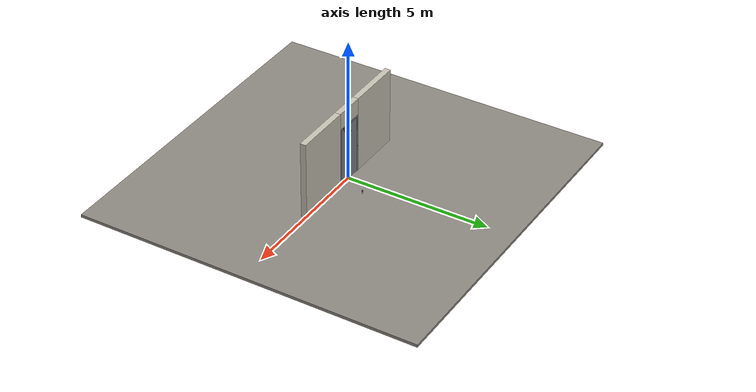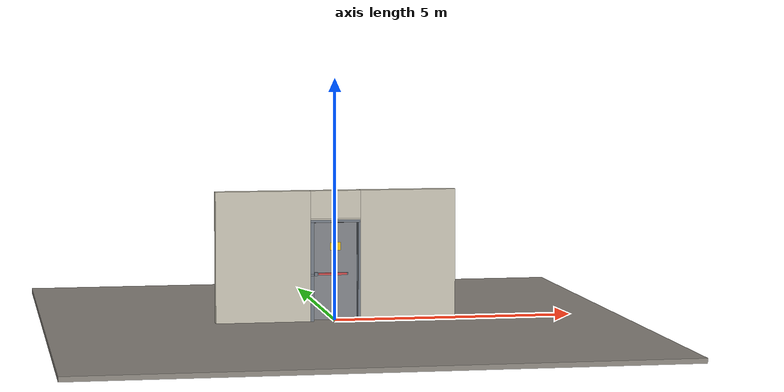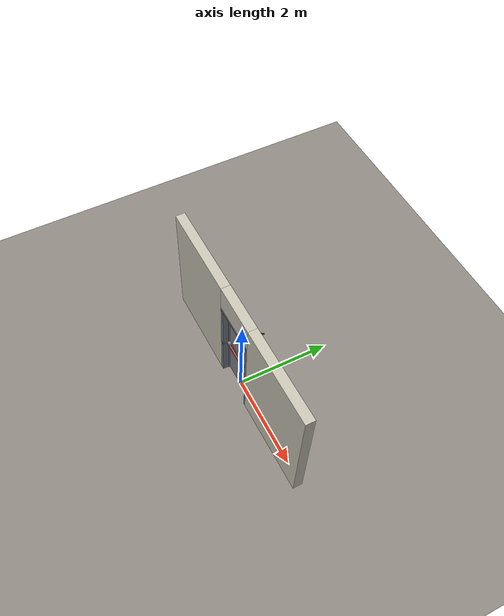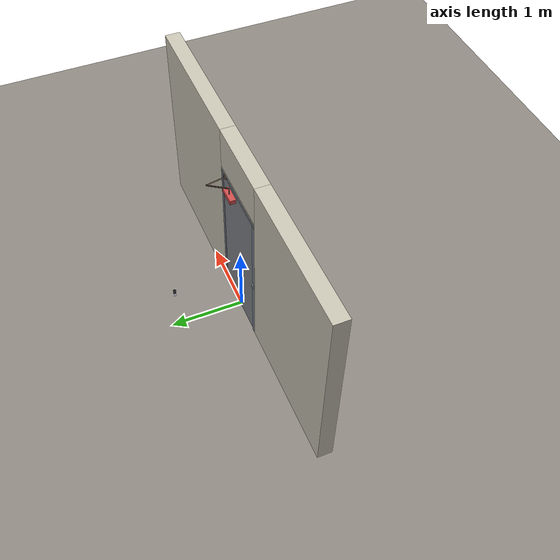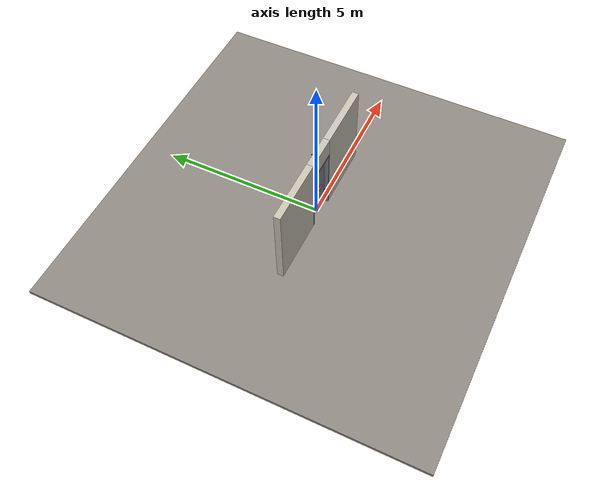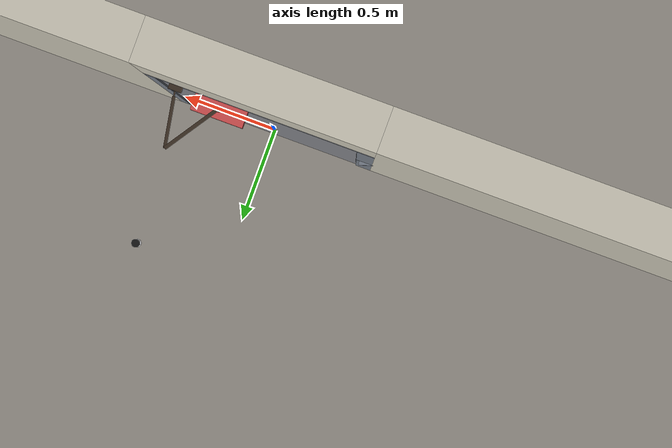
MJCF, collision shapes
<?xml version="1.0" ?>
<mujoco model="db0590_swing_single_full">
  <compiler angle="radian" meshdir="../../hardware" texturedir="../../textures" autolimits="true" inertiafromgeom="false"/>
  <option timestep="0.002" integrator="implicitfast" cone="elliptic" impratio="10" noslip_iterations="3">
    <flag multiccd="enable"/>
  </option>
  <size memory="16M"/>
  <default>
    <geom condim="4" solref="0.005 1" solimp="0.95 0.99 0.001"/>
    <joint solreflimit="0.005 1" solimplimit="0.95 0.99 0.001"/>
    <tendon solreflimit="0.005 1"/>
    <equality solref="0.002 1"/>
  </default>
  <visual>
    <headlight ambient="0.4 0.4 0.4" diffuse="0.7 0.7 0.7" specular="0.2 0.2 0.2"/>
    <quality shadowsize="4096"/>
    <map znear="0.01" zfar="60"/>
  </visual>
  <asset>
    <mesh name="closer_body_b226fdb10b" file="closer_body_b226fdb10b.obj"/>
    <mesh name="exit_sign_a6449bfa2c" file="exit_sign_a6449bfa2c.obj"/>
    <mesh name="hinge_e22b26c0c1" file="hinge_e22b26c0c1.obj"/>
    <mesh name="hinge_jamb_e1d088f8dc" file="hinge_jamb_e1d088f8dc.obj"/>
    <mesh name="touchbar_pad_2729a067b4" file="touchbar_pad_2729a067b4.obj"/>
    <material name="mat_floor" rgba="0.55 0.53 0.5 1" specular="0.2" shininess="0.15" reflectance="0"/>
    <material name="mat_wall" rgba="0.78 0.76 0.7 1" specular="0.2" shininess="0.1" reflectance="0"/>
    <material name="mat_leaf" rgba="0.5 0.51 0.53 1" specular="0.23" shininess="0.47" reflectance="0.02"/>
    <material name="mat_hinge" rgba="0.65 0.66 0.68 1" specular="0.74" shininess="0.5" reflectance="0.36"/>
    <material name="mat_op_steel_painted" rgba="0.45 0.48 0.52 1" specular="0.32" shininess="0.6" reflectance="0.08"/>
    <material name="mat_bolt" rgba="0.75 0.76 0.77 1" specular="0.8" shininess="0.65" reflectance="0.4"/>
    <material name="mat_frame" rgba="0.45 0.48 0.52 1" specular="0.32" shininess="0.6" reflectance="0.08"/>
    <material name="mat_seal" rgba="0.1 0.1 0.1 1" specular="0.2" shininess="0.1" reflectance="0"/>
    <material name="mat_closer" rgba="0.22 0.17 0.13 1" specular="0.8" shininess="0.6" reflectance="0.4"/>
    <material name="mat_exit_sign" rgba="0.85 0.1 0.1 1" specular="0.2" shininess="0.6" reflectance="0"/>
    <material name="mat_sign_bracket" rgba="0.8 0.81 0.83 1" specular="0.8" shininess="0.6" reflectance="0.4"/>
    <material name="mat_placard" rgba="0.95 0.75 0.05 1" specular="0.2" shininess="0.5" reflectance="0"/>
    <material name="mat_bumper_stop" rgba="0.08 0.08 0.08 1" specular="0.2" shininess="0.1" reflectance="0"/>
    <material name="mat_stop_base" rgba="0.9 0.9 0.92 1" specular="0.8" shininess="0.9" reflectance="0.4"/>
    <texture name="skybox" type="skybox" builtin="gradient" rgb1="0.6 0.7 0.85" rgb2="0.9 0.92 0.95" width="256" height="256"/>
  </asset>
  <worldbody>
    <light name="sun" pos="1.5 -2.5 4" dir="-0.3 0.5 -0.8" directional="true" diffuse="0.8 0.8 0.8" specular="0.3 0.3 0.3" castshadow="true"/>
    <light name="fill" pos="-1.5 2.5 3" dir="0.3 -0.5 -0.7" directional="true" diffuse="0.35 0.35 0.4" castshadow="false"/>
    <camera name="robot_view" pos="0 -2.613187 1.734312" xyaxes="1 0 0 0 0.26963 0.962964" fovy="52"/>
    <camera name="far_view" pos="0 2.471187 1.734312" xyaxes="-1 0 0 0 -0.26963 0.962964" fovy="52"/>
    <camera name="iso" pos="-1.932062 -2.206438 2.141063" xyaxes="0.741536 -0.670913 0 0.242917 0.268487 0.932151" fovy="46"/>
    <camera name="detail_handle" pos="-0.1735 -0.871 1.245" xyaxes="0.97561 0.219512 0 -0.070934 0.315262 0.94635" fovy="38"/>
    <geom name="floor" type="box" size="6 6 0.05" pos="0 0 -0.05" material="mat_floor" group="0" contype="1" conaffinity="1" friction="0.8 0.005 0.0001" density="2400"/>
    <geom name="wall_left" type="box" size="0.97975 0.1 1.35" pos="-1.52025 -0.071 1.35" material="mat_wall" group="0" contype="1" conaffinity="1" friction="0.6 0.005 0.0001" density="800"/>
    <geom name="wall_right" type="box" size="0.99475 0.1 1.35" pos="1.50525 -0.071 1.35" material="mat_wall" group="0" contype="1" conaffinity="1" friction="0.6 0.005 0.0001" density="800"/>
    <geom name="wall_header" type="box" size="0.5255 0.1 0.2875" pos="-0.015 -0.071 2.4125" material="mat_wall" group="0" contype="1" conaffinity="1" friction="0.6 0.005 0.0001" density="800"/>
    <geom name="hinge_0_jamb" type="mesh" mesh="hinge_jamb_e1d088f8dc" pos="0.4575 0.029 0.259" quat="0 0 0 1" material="mat_hinge" group="1" contype="0" conaffinity="0" density="7850"/>
    <geom name="hinge_1_jamb" type="mesh" mesh="hinge_jamb_e1d088f8dc" pos="0.4575 0.029 1.025" quat="0 0 0 1" material="mat_hinge" group="1" contype="0" conaffinity="0" density="7850"/>
    <geom name="hinge_2_jamb" type="mesh" mesh="hinge_jamb_e1d088f8dc" pos="0.4575 0.029 1.861" quat="0 0 0 1" material="mat_hinge" group="1" contype="0" conaffinity="0" density="7850"/>
    <geom name="jamb_hinge" type="box" size="0.025 0.1 1.0225" pos="0.4855 -0.071 1.0225" material="mat_frame" group="0" contype="1" conaffinity="1" friction="0.6 0.005 0.0001" density="300"/>
    <geom name="strike_965_wall_n" type="box" size="0.04 0.058 0.02" pos="-0.5005 -0.113 0.965" material="mat_frame" group="0" contype="1" conaffinity="1" friction="0.6 0.005 0.0001" density="300"/>
    <geom name="strike_965_wall_p" type="box" size="0.04 0.008 0.02" pos="-0.5005 -0.025 0.965" material="mat_frame" group="0" contype="1" conaffinity="1" friction="0.6 0.005 0.0001" density="300"/>
    <geom name="strike_965_ramp" type="box" size="0.04 0.034482 0.02" pos="-0.508781 0.0044 0.965" quat="0.989198 0 0 0.146587" material="mat_frame" group="0" contype="1" conaffinity="1" friction="0.12 0.005 0.0001" density="300"/>
    <geom name="strike_965_back" type="box" size="0.0285 0.011 0.02" pos="-0.512 -0.044 0.965" material="mat_frame" group="0" contype="1" conaffinity="1" friction="0.6 0.005 0.0001" density="300"/>
    <geom name="jamb_strike_0" type="box" size="0.04 0.1 0.4725" pos="-0.5005 -0.071 0.4725" material="mat_frame" group="0" contype="1" conaffinity="1" friction="0.6 0.005 0.0001" density="300"/>
    <geom name="jamb_strike_1" type="box" size="0.04 0.1 0.53" pos="-0.5005 -0.071 1.515" material="mat_frame" group="0" contype="1" conaffinity="1" friction="0.6 0.005 0.0001" density="300"/>
    <geom name="jamb_head" type="box" size="0.5255 0.1 0.025" pos="-0.015 -0.071 2.07" material="mat_frame" group="0" contype="1" conaffinity="1" friction="0.6 0.005 0.0001" density="300"/>
    <geom name="head_stud" type="box" size="0.5255 0.1 0.015" pos="-0.015 -0.071 2.11" material="mat_wall" group="0" contype="1" conaffinity="1" friction="0.6 0.005 0.0001" density="500"/>
    <geom name="stop_hinge" type="box" size="0.0055 0.016 1.0225" pos="0.455 -0.0385 1.0225" material="mat_frame" group="0" contype="1" conaffinity="1" friction="0.6 0.005 0.0001" density="300"/>
    <geom name="stop_strike" type="box" size="0.0055 0.016 0.45875" pos="-0.455 -0.0385 0.45875" material="mat_frame" group="0" contype="1" conaffinity="1" friction="0.6 0.005 0.0001" density="300"/>
    <geom name="stop_strike_1" type="box" size="0.0055 0.016 0.51625" pos="-0.455 -0.0385 1.52875" material="mat_frame" group="0" contype="1" conaffinity="1" friction="0.6 0.005 0.0001" density="300"/>
    <geom name="stop_head" type="box" size="0.4605 0.016 0.0055" pos="0 -0.0385 2.0395" material="mat_frame" group="0" contype="1" conaffinity="1" friction="0.6 0.005 0.0001" density="300"/>
    <geom name="seal_hinge" type="box" size="0.004 0.0025 1.0225" pos="0.4575 -0.0245 1.0225" material="mat_seal" group="1" contype="0" conaffinity="0" density="1100"/>
    <geom name="seal_strike" type="box" size="0.004 0.0025 0.45875" pos="-0.4575 -0.0245 0.45875" material="mat_seal" group="1" contype="0" conaffinity="0" density="1100"/>
    <geom name="seal_strike_1" type="box" size="0.004 0.0025 0.51625" pos="-0.4575 -0.0245 1.52875" material="mat_seal" group="1" contype="0" conaffinity="0" density="1100"/>
    <geom name="seal_head" type="box" size="0.4405 0.0025 0.008" pos="0 -0.0245 2.033" material="mat_seal" group="1" contype="0" conaffinity="0" density="1100"/>
    <geom name="closer_bracket" type="box" size="0.03 0.012 0.014" pos="0.3605 0.041 2.075" material="mat_closer" group="1" contype="0" conaffinity="0" density="2700"/>
    <geom name="exit_sign" type="mesh" mesh="exit_sign_a6449bfa2c" pos="0 -0.15 2.345" material="mat_exit_sign" group="2" contype="0" conaffinity="0" density="500"/>
    <geom name="door_stop_base" type="cylinder" size="0.022 0.003" pos="0.4735 0.8059 0.003" material="mat_stop_base" group="0" contype="1" conaffinity="1" friction="0.6 0.005 0.0001" density="7850"/>
    <geom name="door_stop_post" type="cylinder" size="0.012 0.0245" pos="0.4735 0.8059 0.0305" material="mat_stop_base" group="0" contype="1" conaffinity="1" friction="0.6 0.005 0.0001" density="7850"/>
    <geom name="door_stop_bumper" type="cylinder" size="0.022 0.02" pos="0.4735 0.8059 0.075" material="mat_bumper_stop" group="0" contype="1" conaffinity="1" friction="0.6 0.005 0.0001" density="1100"/>
    <site name="approach_point" pos="0 -1.5 0" quat="1 0 0 0" size="0.05" rgba="0.2 0.9 0.2 0.5" group="4"/>
    <site name="goal_point" pos="0 1.5 0" quat="1 0 0 0" size="0.05" rgba="0.2 0.9 0.2 0.5" group="4"/>
    <site name="door_plane_center" pos="0 0 1.0225" quat="1 0 0 0" size="0.02" rgba="0.2 0.9 0.2 0.5" group="4"/>
    <body name="leaf" pos="0.4605 0 0">
      <inertial pos="-0.444195 0.005743 1.130999" mass="62.9803" quat="0.513391 -0.511852 -0.495656 -0.478291" diaginertia="4.22587474 24.084801866 28.238137328"/>
      <joint name="leaf_hinge" type="hinge" axis="0 0 -1" pos="-0.003 0.029 0" limited="true" range="0 1.570796" solreflimit="0.02 1" damping="10.25611" frictionloss="2.080027" stiffness="15.8391" springref="-1.756413" armature="0.02"/>
      <geom name="leaf_slab" type="box" size="0.457 0.022 1.016" pos="-0.46 0 1.025" material="mat_leaf" group="0" contype="1" conaffinity="1" friction="0.4 0.005 0.0001" density="1"/>
      <geom name="hinge_0" type="mesh" mesh="hinge_e22b26c0c1" pos="-0.003 0.029 0.259" quat="0 0 0 1" material="mat_hinge" group="1" contype="0" conaffinity="0" density="7850"/>
      <geom name="hinge_1" type="mesh" mesh="hinge_e22b26c0c1" pos="-0.003 0.029 1.025" quat="0 0 0 1" material="mat_hinge" group="1" contype="0" conaffinity="0" density="7850"/>
      <geom name="hinge_2" type="mesh" mesh="hinge_e22b26c0c1" pos="-0.003 0.029 1.861" quat="0 0 0 1" material="mat_hinge" group="1" contype="0" conaffinity="0" density="7850"/>
      <geom name="leaf_exit_device_rail" type="box" size="0.31705 0.006 0.025" pos="-0.51995 -0.028 0.965" material="mat_op_steel_painted" group="0" contype="1" conaffinity="1" friction="0.6 0.005 0.0001" density="3000"/>
      <geom name="leaf_exit_device_rail_end_n" type="box" size="0.01 0.0325 0.025" pos="-0.827 -0.0545 0.965" material="mat_op_steel_painted" group="0" contype="1" conaffinity="1" friction="0.6 0.005 0.0001" density="3000"/>
      <geom name="leaf_exit_device_rail_end_p" type="box" size="0.01 0.0325 0.025" pos="-0.2129 -0.0545 0.965" material="mat_op_steel_painted" group="0" contype="1" conaffinity="1" friction="0.6 0.005 0.0001" density="3000"/>
      <geom name="leaf_exit_device_case" type="box" size="0.034 0.034125 0.0375" pos="-0.871 -0.056125 0.965" material="mat_op_steel_painted" group="0" contype="1" conaffinity="1" friction="0.6 0.005 0.0001" density="3000"/>
      <geom name="closer_body" type="mesh" mesh="closer_body_b226fdb10b" pos="-0.3 0.022 1.952" quat="0 0 0.707107 0.707107" material="mat_closer" group="1" contype="0" conaffinity="0" density="2000"/>
      <geom name="closer_body_col" type="box" size="0.12 0.04 0.03" pos="-0.3 0.062 1.952" material="mat_closer" group="3" contype="1" conaffinity="1" rgba="0.8 0.3 0.3 0.25" friction="0.6 0.005 0.0001" density="2000"/>
      <geom name="closer_pinion_shaft" type="cylinder" size="0.008 0.0615" pos="-0.3 0.064 2.0135" material="mat_closer" group="1" contype="0" conaffinity="0" density="2700"/>
      <geom name="warning_placard" type="box" size="0.11 0.001 0.08" pos="-0.46 -0.023 1.533" material="mat_placard" group="2" contype="0" conaffinity="0" density="1000"/>
      <site name="leaf_edge_mid" pos="-0.917 0 1.016" quat="1 0 0 0" size="0.02" rgba="0.2 0.9 0.2 0.5" group="4"/>
      <body name="leaf_exit_device" pos="-0.51995 -0.022 0.965">
        <inertial pos="0 -0.05 0" mass="4.76361" quat="0 0 -0.707107 0.707107" diaginertia="0.00116113 0.137653089 0.138099678"/>
        <joint name="leaf_exit_device_slide" type="slide" axis="0 1 0" limited="true" range="0 0.016" damping="221.666642" frictionloss="0.5" stiffness="2500" springref="-0.018" armature="0.15"/>
        <geom name="leaf_exit_device_pad" type="mesh" mesh="touchbar_pad_2729a067b4" pos="0 0 0" quat="0 0 -0.707107 0.707107" material="mat_op_steel_painted" group="1" contype="0" conaffinity="0" density="3000"/>
        <geom name="leaf_exit_device_pad_col" type="box" size="0.29405 0.015 0.0225" pos="0 -0.05 0" material="mat_op_steel_painted" group="3" contype="1" conaffinity="1" rgba="0.8 0.3 0.3 0.25" friction="0.8 0.01 0.0001" density="3000"/>
        <site name="leaf_exit_device_push" pos="0 -0.065 0" quat="1 0 0 0" size="0.015" rgba="0.2 0.9 0.2 0.5" group="4"/>
      </body>
      <body name="leaf_latch_bolt" pos="-0.917 -0.044 0.965">
        <inertial pos="0.0055 0 0" mass="0.102826" quat="0.92388 0.382683 0 0" diaginertia="0.000004365 0.000018287 0.000018287"/>
        <joint name="leaf_latch_bolt_slide" type="slide" axis="1 0 0" limited="true" range="0 0.019" damping="2" frictionloss="0.3" stiffness="800" springref="-0.01" armature="0.1"/>
        <geom name="leaf_latch_bolt_capsule" type="capsule" size="0.0095 0.015" pos="0.0055 0 0" quat="0.707107 0 -0.707107 0" material="mat_bolt" group="0" contype="1" conaffinity="1" friction="0.2 0.005 0.0001" density="8500"/>
      </body>
      <body name="closer_arm_main" pos="-0.3 0.064 2.075" quat="0.881485 0 0 0.472212">
        <inertial pos="0.14 0 0" mass="0.12096" quat="1 0 0 0" diaginertia="0.000003588 0.00079128 0.000792852"/>
        <joint name="closer_pinion" type="hinge" axis="0 0 1" limited="false" damping="0.01" armature="0.002"/>
        <geom name="closer_arm_main_geom" type="box" size="0.14 0.008 0.005" pos="0.14 0 0" material="mat_closer" group="1" contype="0" conaffinity="0" density="2700"/>
        <body name="closer_arm_fore" pos="0.28 0 0" quat="0.371222 0 0 -0.928544">
          <inertial pos="0.128088 0 0" mass="0.076531" quat="1 0 0 0" diaginertia="0.000001771 0.000437665 0.000438201"/>
          <joint name="closer_elbow" type="hinge" axis="0 0 1" limited="false" damping="0.01" armature="0.002"/>
          <geom name="closer_arm_fore_geom" type="box" size="0.1125 0.007 0.004" pos="0.1125 0 0" material="mat_closer" group="1" contype="0" conaffinity="0" density="2700"/>
          <geom name="closer_fore_neck" type="box" size="0.0175 0.003 0.003" pos="0.2425 0 0" material="mat_closer" group="1" contype="0" conaffinity="0" density="2700"/>
          <geom name="closer_fore_pivot" type="cylinder" size="0.005 0.012" pos="0.26 0 0" material="mat_closer" group="1" contype="0" conaffinity="0" density="2700"/>
        </body>
      </body>
    </body>
  </worldbody>
  <tendon>
    <fixed name="leaf_latch_bolt_coupling" limited="true" range="0 10">
      <joint joint="leaf_latch_bolt_slide" coef="1"/>
      <joint joint="leaf_exit_device_slide" coef="-1.583333"/>
    </fixed>
  </tendon>
  <equality>
    <connect name="closer_arm_connect" body1="closer_arm_fore" body2="world" anchor="0.26 0 0" active="true"/>
  </equality>
  <contact>
    <exclude body1="closer_arm_main" body2="leaf"/>
    <exclude body1="closer_arm_fore" body2="leaf"/>
    <exclude body1="closer_arm_main" body2="closer_arm_fore"/>
  </contact>
  <sensor>
    <jointpos name="leaf_hinge_pos" joint="leaf_hinge"/>
    <jointvel name="leaf_hinge_vel" joint="leaf_hinge"/>
    <jointpos name="leaf_exit_device_slide_pos" joint="leaf_exit_device_slide"/>
    <jointvel name="leaf_exit_device_slide_vel" joint="leaf_exit_device_slide"/>
    <jointpos name="leaf_latch_bolt_slide_pos" joint="leaf_latch_bolt_slide"/>
    <jointvel name="leaf_latch_bolt_slide_vel" joint="leaf_latch_bolt_slide"/>
  </sensor>
</mujoco>
